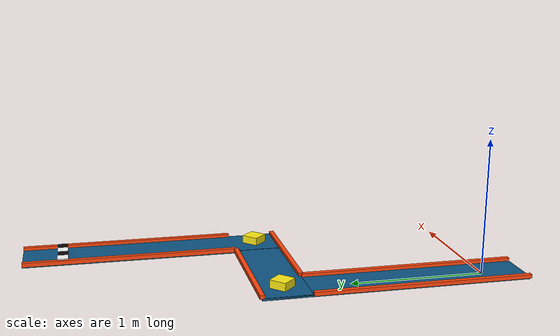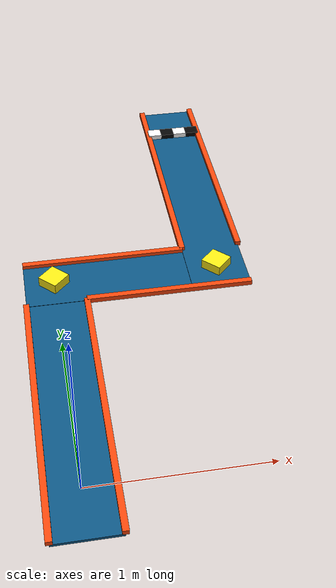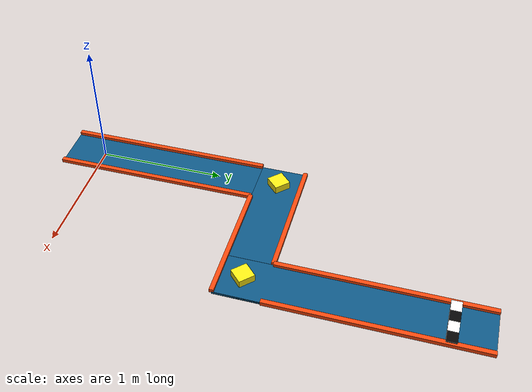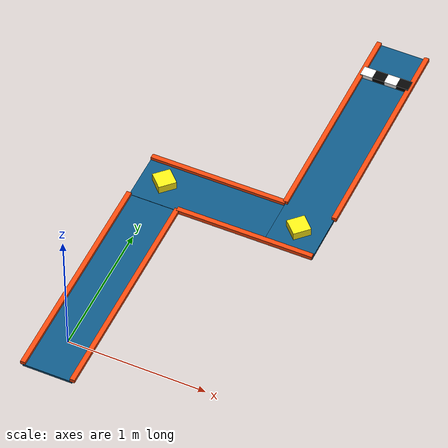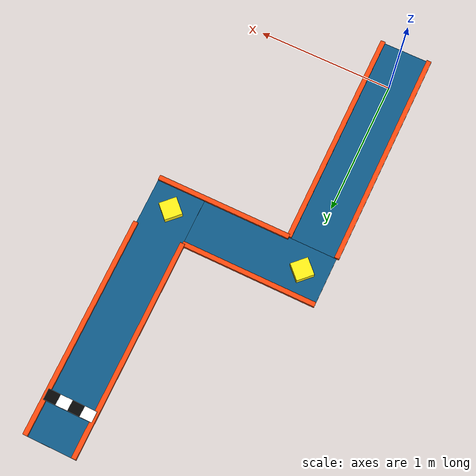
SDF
<?xml version="1.0"?>
<sdf version="1.9">
  <model name="tinympc_chicane_course">
    <static>true</static>

    <link name="course_floor">
      <visual name="first_lane">
        <pose>0 0.69 0.008 0 0 0</pose>
        <geometry><box><size>0.36 1.98 0.016</size></box></geometry>
        <material><ambient>0.04 0.26 0.40 1</ambient><diffuse>0.05 0.34 0.52 1</diffuse></material>
      </visual>
      <visual name="turn_lane">
        <pose>0.50 1.50 0.009 0 0 0</pose>
        <geometry><box><size>1.36 0.36 0.018</size></box></geometry>
        <material><ambient>0.04 0.26 0.40 1</ambient><diffuse>0.05 0.34 0.52 1</diffuse></material>
      </visual>
      <visual name="final_lane">
        <pose>1.00 2.31 0.010 0 0 0</pose>
        <geometry><box><size>0.36 1.98 0.020</size></box></geometry>
        <material><ambient>0.04 0.26 0.40 1</ambient><diffuse>0.05 0.34 0.52 1</diffuse></material>
      </visual>
    </link>

    <!-- High-contrast center-envelope boundaries; no collision geometry. -->
    <link name="corridor_edges">
      <visual name="first_left">
        <pose>0.18 0.51 0.026 0 0 0</pose>
        <geometry><box><size>0.035 1.62 0.028</size></box></geometry>
        <material><ambient>1 0.20 0.04 1</ambient><diffuse>1 0.28 0.05 1</diffuse></material>
      </visual>
      <visual name="first_right">
        <pose>-0.18 0.51 0.026 0 0 0</pose>
        <geometry><box><size>0.035 1.62 0.028</size></box></geometry>
        <material><ambient>1 0.20 0.04 1</ambient><diffuse>1 0.28 0.05 1</diffuse></material>
      </visual>
      <visual name="turn_lower">
        <pose>0.68 1.32 0.027 0 0 0</pose>
        <geometry><box><size>1.00 0.035 0.030</size></box></geometry>
        <material><ambient>1 0.20 0.04 1</ambient><diffuse>1 0.28 0.05 1</diffuse></material>
      </visual>
      <visual name="turn_upper">
        <pose>0.32 1.68 0.027 0 0 0</pose>
        <geometry><box><size>1.00 0.035 0.030</size></box></geometry>
        <material><ambient>1 0.20 0.04 1</ambient><diffuse>1 0.28 0.05 1</diffuse></material>
      </visual>
      <visual name="final_left">
        <pose>1.18 2.49 0.028 0 0 0</pose>
        <geometry><box><size>0.035 1.62 0.032</size></box></geometry>
        <material><ambient>1 0.20 0.04 1</ambient><diffuse>1 0.28 0.05 1</diffuse></material>
      </visual>
      <visual name="final_right">
        <pose>0.82 2.49 0.028 0 0 0</pose>
        <geometry><box><size>0.035 1.62 0.032</size></box></geometry>
        <material><ambient>1 0.20 0.04 1</ambient><diffuse>1 0.28 0.05 1</diffuse></material>
      </visual>
    </link>

    <link name="corner_markers">
      <visual name="corner_one">
        <pose>0 1.50 0.045 0 0 0.785398</pose>
        <geometry><box><size>0.13 0.13 0.07</size></box></geometry>
        <material><ambient>1 0.86 0.04 1</ambient><diffuse>1 0.92 0.08 1</diffuse></material>
      </visual>
      <visual name="corner_two">
        <pose>1.00 1.50 0.045 0 0 0.785398</pose>
        <geometry><box><size>0.13 0.13 0.07</size></box></geometry>
        <material><ambient>1 0.86 0.04 1</ambient><diffuse>1 0.92 0.08 1</diffuse></material>
      </visual>
    </link>

    <link name="finish_marker">
      <pose>1.00 3.00 0.034 0 0 0</pose>
      <visual name="finish_one">
        <pose>-0.135 0 0 0 0 0</pose>
        <geometry><box><size>0.09 0.08 0.036</size></box></geometry>
        <material><ambient>1 1 1 1</ambient><diffuse>1 1 1 1</diffuse></material>
      </visual>
      <visual name="finish_two">
        <pose>-0.045 0 0 0 0 0</pose>
        <geometry><box><size>0.09 0.08 0.036</size></box></geometry>
        <material><ambient>0.02 0.02 0.02 1</ambient><diffuse>0.02 0.02 0.02 1</diffuse></material>
      </visual>
      <visual name="finish_three">
        <pose>0.045 0 0 0 0 0</pose>
        <geometry><box><size>0.09 0.08 0.036</size></box></geometry>
        <material><ambient>1 1 1 1</ambient><diffuse>1 1 1 1</diffuse></material>
      </visual>
      <visual name="finish_four">
        <pose>0.135 0 0 0 0 0</pose>
        <geometry><box><size>0.09 0.08 0.036</size></box></geometry>
        <material><ambient>0.02 0.02 0.02 1</ambient><diffuse>0.02 0.02 0.02 1</diffuse></material>
      </visual>
    </link>
  </model>
</sdf>
